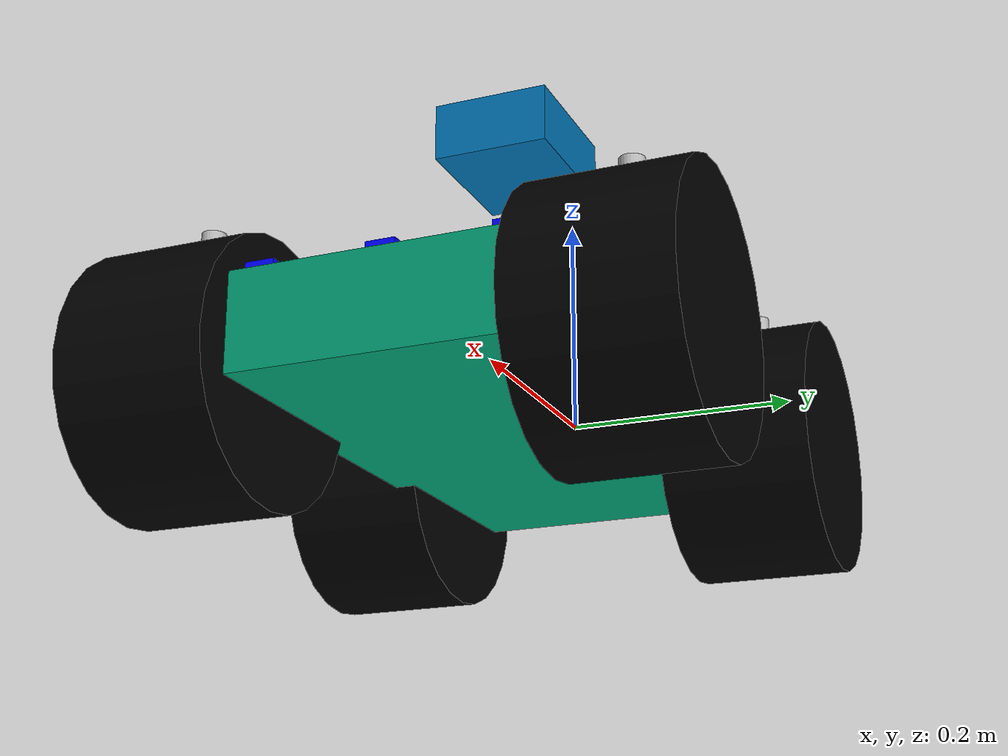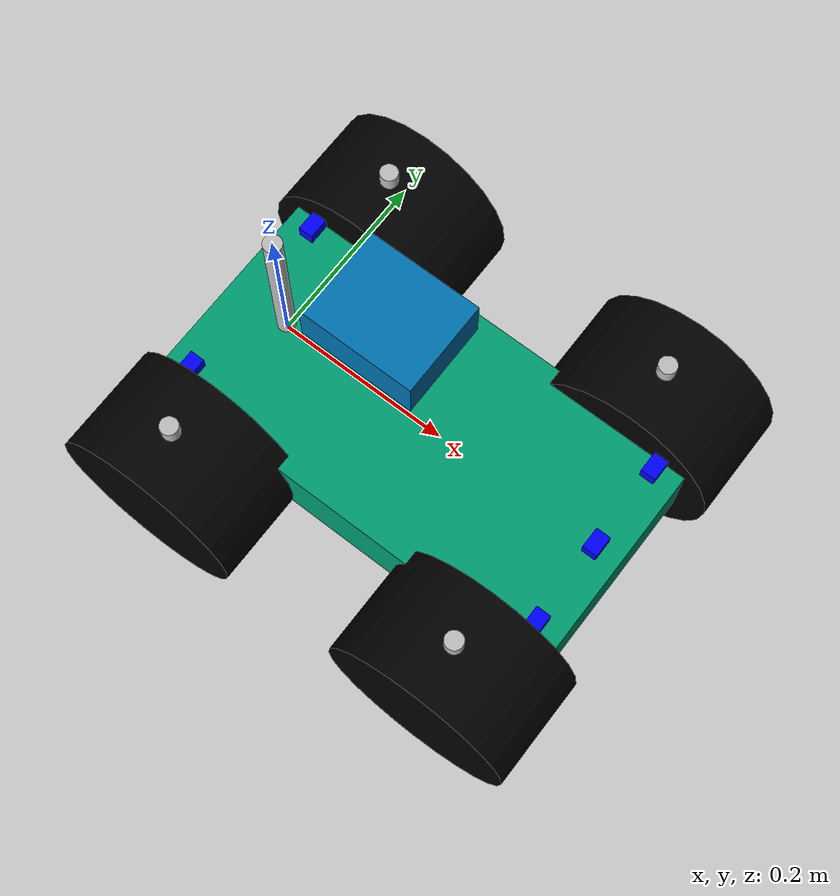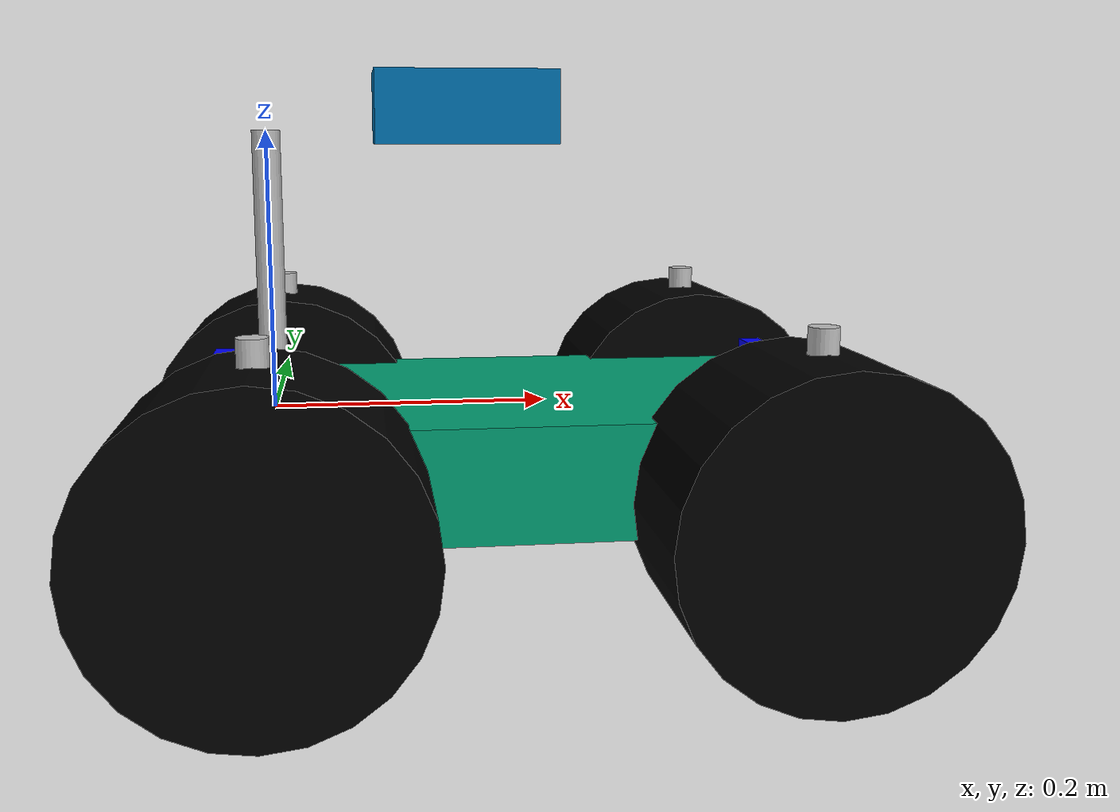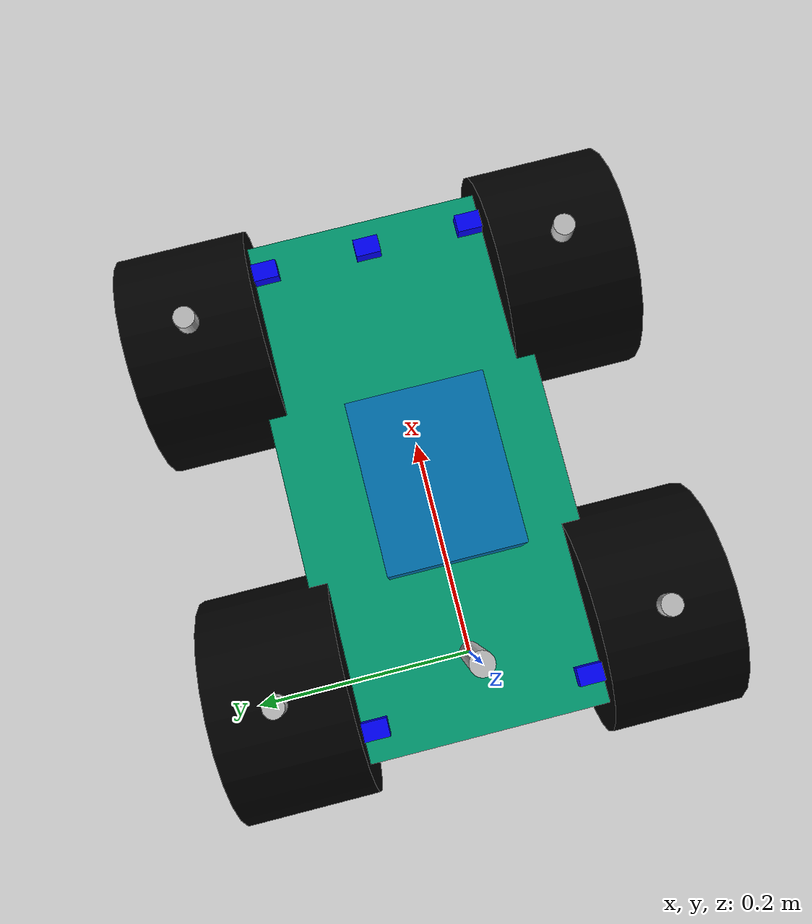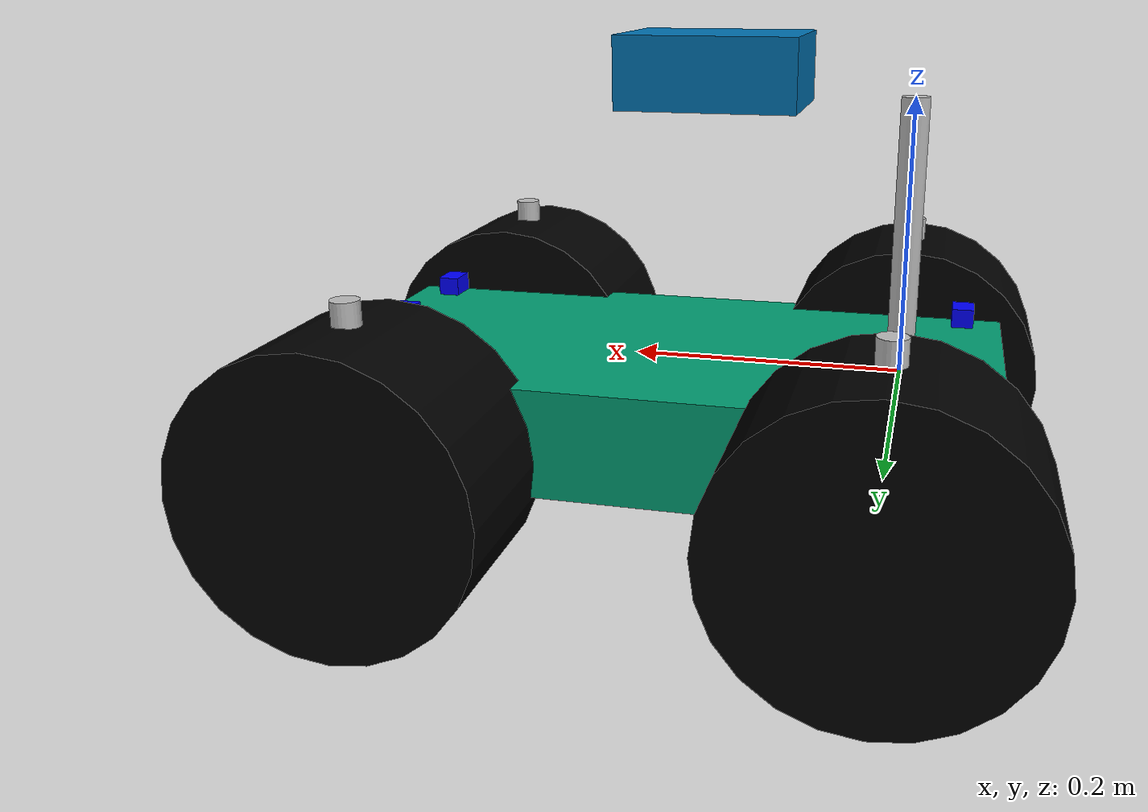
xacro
<?xml version="1.0"?>
<robot xmlns:xacro="http://ros.org/wiki/xacro" name="car">
  <xacro:arg name="wheel_diameter" default="0.217"/>

  <xacro:property name="wheel_radius" value="${$(arg wheel_diameter)/2}"/>
  <xacro:property name="wheel_width" value="0.125"/>
  <xacro:property name="wheel_friction" value="1.22"/>
  <xacro:property name="wheelbase_length" value="0.35"/>
  <xacro:property name="front_wheelbase_width" value="0.35"/>
  <xacro:property name="rear_wheelbase_width" value="0.35"/>
  <xacro:property name="wheel_mass" value="0.82"/>
  <xacro:property name="total_mass" value = "8.0"/>
  <xacro:property name="shock_travel" value = "0.09"/>
  <xacro:property name="chassis_height" value = "0.08"/>
  <xacro:property name="chassis_elevation" value = "-0.07"/>
  <xacro:property name="chassis_mass" value = "${total_mass-4*wheel_mass}"/>

  <xacro:property name="chassis_length" value = "0.50"/>
  <xacro:property name="chassis_width" value = "0.26"/>

  <xacro:macro name="cylinder_inertia" params="m r h">
        <inertia  ixx="${m*(3*r*r+h*h)/12}" ixy = "0" ixz = "0"
                    iyy="${m*(3*r*r+h*h)/12}" iyz = "0"
                    izz="${m*r*r/2}" />
  </xacro:macro>

  <xacro:macro name="box_inertia" params="m x y z">
          <inertia  ixx="${m*(y*y+z*z)/12}" ixy = "0" ixz = "0"
                    iyy="${m*(x*x+z*z)/12}" iyz = "0"
                    izz="${m*(x*x+z*z)/12}" />
  </xacro:macro>

  <xacro:macro name="sphere_inertia" params="m r">
          <inertia  ixx="${2*m*r*r/5}" ixy = "0" ixz = "0"
                    iyy="${2*m*r*r/5}" iyz = "0"
                    izz="${2*m*r*r/5}" />
  </xacro:macro>

  <xacro:macro name="cylinder_inertial" params="m r h">
    <inertial>
      <mass value="${m}"/>
      <xacro:cylinder_inertia m="${m}" r="${r}" h="${h}"/>
    </inertial>
  </xacro:macro>

  <link name="base_footprint"/>

  <link name="base_link">
    <visual>
      <origin xyz="0 0 0.1" rpy="0 0 0"/>
      <geometry>
        <cylinder length="0.2" radius="0.01"/>
      </geometry>
      <material name="silver">
        <color rgba="0.75 0.75 0.75 1"/>
      </material>
    </visual>
    <collision>
      <origin xyz="0 0 0.1" rpy="0 0 0"/>
      <geometry>
        <cylinder length="0.2" radius="0.01"/>
      </geometry>
    </collision>
    <inertial>
      <mass value="0.01"/>
      <inertia ixx="0.015" iyy="0.0375" izz="0.0375"
               ixy="0" ixz="0" iyz="0"/>
    </inertial>
  </link>

  <link name="chassis_link">
    <visual>
      <geometry>
        <box size="${chassis_length} ${chassis_width} ${chassis_height}"/>
      </geometry>
    </visual>
    <collision>
      <geometry>
        <box size="${chassis_length} ${chassis_width} ${chassis_height}"/>
      </geometry>
    </collision>
    <inertial>
      <mass value="${chassis_mass}"/>
      <xacro:box_inertia m="${chassis_mass}" x="${chassis_length}" y="${chassis_width}" z="${chassis_height}"/>
    </inertial>
  </link>

  <link name="back_left_wheel">
    <visual>
      <geometry>
        <cylinder length="${wheel_width}" radius="${wheel_radius}"/>
      </geometry>
      <material name="black">
        <color rgba="0 0 0 1"/>
      </material>
    </visual>
    <collision>
      <geometry>
        <cylinder length="${wheel_width}" radius="${wheel_radius}"/>
      </geometry>
    </collision>

    <xacro:cylinder_inertial m="${wheel_mass}" r="${wheel_radius}" h="${wheel_width}"/>
  </link>

  <link name="laser_scanner_link">
    <collision>
      <origin xyz="0 0 0" rpy="0 0 0"/>
      <geometry>
        <box size=".127 0.1016 0.0508"/>
      </geometry>
    </collision>
    <visual>
      <origin xyz="0 0 0" rpy="0 0 0"/>
      <geometry>
        <box size=".127 0.1016 0.0508"/>
      </geometry>
    </visual>
    <inertial>
      <mass value="1e-5"/>
      <origin xyz="0 0 0" rpy="0 0 0"/>
      <inertia ixx="1e-6" ixy="0" ixz="0" iyy="1e-6" iyz="0" izz="1e-6"/>
    </inertial>
  </link>

  <gazebo reference="laser_scanner_link">
    <sensor type="ray" name="laser_scanner">
      <always_on>true</always_on>
      <visualize>true</visualize>
      <update_rate>3</update_rate>
      <ray>
        <scan>
          <horizontal>
            <samples>360</samples>
            <resolution>1</resolution>
            <min_angle>${-pi}</min_angle>
            <max_angle>${pi}</max_angle>
          </horizontal>
        </scan>
        <range>
          <min>0.30</min>
          <max>25.0</max>
          <resolution>0.1</resolution>
        </range>
      </ray>
      <plugin name="scan" filename="libgazebo_ros_ray_sensor.so">
        <ros>
          <remapping>~/out:=scan</remapping>
        </ros>
        <output_type>sensor_msgs/LaserScan</output_type>
        <frame_name>laser_scanner_link</frame_name>
      </plugin>
    </sensor>
  </gazebo>

  <link name="back_right_wheel">
    <visual>
      <geometry>
        <cylinder length="${wheel_width}" radius="${wheel_radius}"/>
      </geometry>
      <material name="black">
        <color rgba="0 0 0 1"/>
      </material>
    </visual>
    <collision>
      <geometry>
        <cylinder length="${wheel_width}" radius="${wheel_radius}"/>
      </geometry>
    </collision>
    <xacro:cylinder_inertial m="${wheel_mass}" r="${wheel_radius}" h="${wheel_width}"/>
  </link>

  <link name="front_left_wheel_steer">
    <visual>
      <geometry>
        <cylinder length="0.01" radius="0.01"/>
      </geometry>
      <material name="black">
        <color rgba="0 0 0 1"/>
      </material>
    </visual>
    <collision>
      <geometry>
        <cylinder length="0.01" radius="0.01"/>
      </geometry>
    </collision>
    <inertial>
      <mass value="0.1"/>
      <inertia ixx="5.1458e-5" iyy="5.1458e-5" izz="6.125e-5"
               ixy="0" ixz="0" iyz="0"/>
    </inertial>
  </link>
  <link name="front_left_wheel">
    <visual>
      <geometry>
        <cylinder length="${wheel_width}" radius="${wheel_radius}"/>
      </geometry>
      <material name="black">
        <color rgba="0 0 0 1"/>
      </material>
    </visual>
    <collision>
      <geometry>
        <cylinder length="${wheel_width}" radius="${wheel_radius}"/>
      </geometry>
    </collision>
    <xacro:cylinder_inertial m="${wheel_mass}" r="${wheel_radius}" h="${wheel_width}"/>
  </link>

  <link name="front_right_wheel_steer">
    <visual>
      <geometry>
        <cylinder length="0.01" radius="0.01"/>
      </geometry>
      <material name="black">
        <color rgba="0 0 0 1"/>
      </material>
    </visual>
    <collision>
      <geometry>
        <cylinder length="0.01" radius="0.01"/>
      </geometry>
    </collision>
    <inertial>
      <mass value="0.1"/>
      <inertia ixx="5.1458e-5" iyy="5.1458e-5" izz="6.125e-5"
               ixy="0" ixz="0" iyz="0"/>
    </inertial>
  </link>

  <link name="front_right_wheel">
    <visual>
      <geometry>
        <cylinder length="${wheel_width}" radius="${wheel_radius}"/>
      </geometry>
      <material name="black">
        <color rgba="0 0 0 1"/>
      </material>
    </visual>
    <collision>
      <geometry>
        <cylinder length="${wheel_width}" radius="${wheel_radius}"/>
      </geometry>
    </collision>
    <xacro:cylinder_inertial m="${wheel_mass}" r="${wheel_radius}" h="${wheel_width}"/>
  </link>

  <link name="back_left_wheel_shock">
      <visual>
      <origin xyz="0 0 0.1" rpy="0 0 0"/>
      <geometry>
        <cylinder length="0.05" radius="0.01"/>
      </geometry>
      <material name="silver">
        <color rgba="0.75 0.75 0.75 1"/>
      </material>
    </visual>
    <collision>
      <origin xyz="0 0 0.1" rpy="0 0 0"/>
      <geometry>
        <cylinder length="0.05" radius="0.01"/>
      </geometry>
    </collision>
    <inertial>
      <mass value="0.01"/>
      <inertia ixx="0.015" iyy="0.0375" izz="0.0375"
               ixy="0" ixz="0" iyz="0"/>
    </inertial>
  </link>

  <link name="back_right_wheel_shock">
    <visual>
    <origin xyz="0 0 0.1" rpy="0 0 0"/>
    <geometry>
      <cylinder length="0.05" radius="0.01"/>
    </geometry>
    <material name="silver">
      <color rgba="0.75 0.75 0.75 1"/>
    </material>
  </visual>
  <collision>
    <origin xyz="0 0 0.1" rpy="0 0 0"/>
    <geometry>
      <cylinder length="0.05" radius="0.01"/>
    </geometry>
  </collision>
  <inertial>
    <mass value="0.01"/>
    <inertia ixx="0.015" iyy="0.0375" izz="0.0375"
              ixy="0" ixz="0" iyz="0"/>
  </inertial>
</link>

  <link name="front_left_wheel_shock">
      <visual>
      <origin xyz="0 0 0.1" rpy="0 0 0"/>
      <geometry>
        <cylinder length="0.05" radius="0.01"/>
      </geometry>
      <material name="silver">
        <color rgba="0.75 0.75 0.75 1"/>
      </material>
    </visual>
    <collision>
      <origin xyz="0 0 0.1" rpy="0 0 0"/>
      <geometry>
        <cylinder length="0.05" radius="0.01"/>
      </geometry>
    </collision>
    <inertial>
      <mass value="0.01"/>
      <inertia ixx="0.015" iyy="0.0375" izz="0.0375"
               ixy="0" ixz="0" iyz="0"/>
    </inertial>
  </link>

  <link name="front_right_wheel_shock">
      <visual>
      <origin xyz="0 0 0.1" rpy="0 0 0"/>
      <geometry>
        <cylinder length="0.05" radius="0.01"/>
      </geometry>
      <material name="silver">
        <color rgba="0.75 0.75 0.75 1"/>
      </material>
    </visual>
    <collision>
      <origin xyz="0 0 0.1" rpy="0 0 0"/>
      <geometry>
        <cylinder length="0.05" radius="0.01"/>
      </geometry>
    </collision>
    <inertial>
      <mass value="0.01"/>
      <inertia ixx="0.015" iyy="0.0375" izz="0.0375"
               ixy="0" ixz="0" iyz="0"/>
    </inertial>
  </link>

  <joint name="base_link_joint" type="fixed">
     <parent link="base_footprint"/>
     <child link="base_link"/>
     <origin rpy="0 0 0" xyz="0 0 0"/>
  </joint>

  <joint name="laser_scanner_joint" type="fixed">
    <origin rpy="0 0 0" xyz="0.1397 0 0.2159"/>
    <parent link="base_link"/>
    <child link="laser_scanner_link"/>
  </joint>

  <joint name="back_left_shock_joint" type="prismatic">
    <limit lower="0" upper="${shock_travel}" effort="100" velocity="100"/>
    <axis xyz="0 0 1"/>
    <parent link="base_link"/>
    <child link="back_left_wheel_shock"/>
    <origin rpy="0 0 0" xyz="0 ${rear_wheelbase_width/2}  ${-shock_travel/2}"/>
  </joint>

  <joint name="back_left_wheel_joint" type="continuous">
    <axis xyz="0 0 1"/>
    <parent link="back_left_wheel_shock"/>
    <child link="back_left_wheel"/>
    <origin rpy="${-pi/2} 0 0" xyz="0 0 0"/>
    <limit effort="10000" velocity="500" />
  </joint>

  <joint name="back_right_shock_joint" type="prismatic">
    <limit lower="0" upper="${shock_travel}" effort="100" velocity="100"/>
    <axis xyz="0 0 1"/>
    <parent link="base_link"/>
    <child link="back_right_wheel_shock"/>
    <origin rpy="0 0 0" xyz="0 ${-rear_wheelbase_width/2} ${-shock_travel/2}"/>
  </joint>

  <joint name="back_right_wheel_joint" type="continuous">
    <axis xyz="0 0 1"/>
    <parent link="back_right_wheel_shock"/>
    <child link="back_right_wheel"/>
    <origin rpy="${-pi/2} 0 0" xyz="0 0 0"/>
    <limit effort="10000" velocity="500" />
  </joint>

  <joint name="front_right_shock_joint" type="prismatic">
    <limit lower="0" upper="${shock_travel}" effort="100" velocity="100"/>
    <axis xyz="0 0 1"/>
    <parent link="base_link"/>
    <child link="front_right_wheel_shock"/>
    <origin rpy="0 0 0" xyz="${wheelbase_length} ${-front_wheelbase_width/2} ${-shock_travel/2}"/>
  </joint>

  <joint name="front_left_shock_joint" type="prismatic">
    <limit lower="0" upper="${shock_travel}" effort="100" velocity="100"/>
    <axis xyz="0 0 1"/>
    <parent link="base_link"/>
    <child link="front_left_wheel_shock"/>
    <origin rpy="0 0 0" xyz="${wheelbase_length} ${front_wheelbase_width/2}  ${-shock_travel/2}"/>
  </joint>

  <joint name="front_left_wheel_steer_joint" type="revolute">
    <limit lower="-1" upper="1" effort="1" velocity="5"/>
    <axis xyz="0 0 1"/>
    <parent link="front_left_wheel_shock"/>
    <child link="front_left_wheel_steer"/>
    <origin rpy="0 0 0" xyz="0 0 0"/>
  </joint>

  <joint name="front_left_wheel_joint" type="continuous">
    <axis xyz="0 0 1"/>
    <parent link="front_left_wheel_steer"/>
    <child link="front_left_wheel"/>
    <origin rpy="${-pi/2} 0 0" xyz="0 0 0"/>
  </joint>

  <joint name="front_right_wheel_steer_joint" type="revolute">
    <limit lower="-1" upper="1" effort="1" velocity="5"/>
    <axis xyz="0 0 1"/>
    <parent link="front_right_wheel_shock"/>
    <child link="front_right_wheel_steer"/>
    <origin rpy="0 0 0" xyz="0 0 0"/>
  </joint>

  <joint name="front_right_wheel_joint" type="continuous">
    <axis xyz="0 0 1"/>
    <parent link="front_right_wheel_steer"/>
    <child link="front_right_wheel"/>
    <origin rpy="${-pi/2} 0 0" xyz="0 0 0"/>
  </joint>

  <joint name="chassis_joint" type="fixed">
    <parent link="base_link"/>
    <child link="chassis_link"/>
    <origin rpy="0 0 0" xyz="${wheelbase_length/2} 0 ${chassis_height/2 + chassis_elevation}"/>
  </joint>

  <gazebo>
    <plugin name="gazebo_ros_control" filename="libgazebo_ros_control.so">
      <robotNamespace>/sim_car</robotNamespace>
    </plugin>
  </gazebo>

  <gazebo reference="front_left_wheel">
    <mu1>${wheel_friction}</mu1>
    <material>Gazebo/DarkGrey</material>
  </gazebo>
  <gazebo reference="front_right_wheel">
    <mu1>${wheel_friction}</mu1>
    <material>Gazebo/DarkGrey</material>
  </gazebo>
  <gazebo reference="back_left_wheel">
    <mu1>${wheel_friction}</mu1>
    <material>Gazebo/DarkGrey</material>
  </gazebo>
  <gazebo reference="back_right_wheel">
    <mu1>${wheel_friction}</mu1>
    <material>Gazebo/DarkGrey</material>
  </gazebo>

  <gazebo reference="base_link">
    <dampingFactor>0.00007</dampingFactor>
  </gazebo>
  <gazebo>
    <plugin name="car_gazebo_plugin" filename="libcar_gazebo_plugin.so">
    </plugin>
  </gazebo>

  <!-- Add ultrasonic sensors -->
  <link name="ultrasonic_sensor1">
    <visual>
      <geometry>
        <box size="0.017 0.024 0.020"/>
      </geometry>
      <material name="blue">
        <color rgba="0 0 1 1"/>
      </material>
    </visual>
    <collision>
      <geometry>
        <box size="0.017 0.024 0.020"/>
      </geometry>
    </collision>
    <inertial>
      <mass value="0.1"/>
      <inertia ixx="5.1458e-5" iyy="5.1458e-5" izz="6.125e-5"
              ixy="0" ixz="0" iyz="0"/>
    </inertial>
  </link>

  <link name="ultrasonic_sensor2">
    <visual>
      <geometry>
        <box size="0.017 0.024 0.020"/>
      </geometry>
      <material name="blue">
        <color rgba="0 0 1 1"/>
      </material>
    </visual>
    <collision>
      <geometry>
        <box size="0.017 0.024 0.020"/>
      </geometry>
    </collision>
    <inertial>
      <mass value="0.1"/>
      <inertia ixx="5.1458e-5" iyy="5.1458e-5" izz="6.125e-5"
              ixy="0" ixz="0" iyz="0"/>
    </inertial>
  </link>

  <link name="ultrasonic_sensor3">
    <visual>
      <geometry>
        <box size="0.017 0.024 0.020"/>
      </geometry>
      <material name="blue">
        <color rgba="0 0 1 1"/>
      </material>
    </visual>
    <collision>
      <geometry>
        <box size="0.017 0.024 0.020"/>
      </geometry>
    </collision>
    <inertial>
      <mass value="0.1"/>
      <inertia ixx="5.1458e-5" iyy="5.1458e-5" izz="6.125e-5"
              ixy="0" ixz="0" iyz="0"/>
    </inertial>
  </link>

  <link name="ultrasonic_sensor4">
    <visual>
      <geometry>
        <box size="0.017 0.024 0.020"/>
      </geometry>
      <material name="blue">
        <color rgba="0 0 1 1"/>
      </material>
    </visual>
    <collision>
      <geometry>
        <box size="0.017 0.024 0.020"/>
      </geometry>
    </collision>
    <inertial>
      <mass value="0.1"/>
      <inertia ixx="5.1458e-5" iyy="5.1458e-5" izz="6.125e-5"
              ixy="0" ixz="0" iyz="0"/>
    </inertial>
  </link>

  <link name="ultrasonic_sensor5">
    <visual>
      <geometry>
        <box size="0.017 0.024 0.020"/>
      </geometry>
      <material name="blue">
        <color rgba="0 0 1 1"/>
      </material>
    </visual>
    <collision>
      <geometry>
        <box size="0.017 0.024 0.020"/>
      </geometry>
    </collision>
    <inertial>
      <mass value="0.1"/>
      <inertia ixx="5.1458e-5" iyy="5.1458e-5" izz="6.125e-5"
              ixy="0" ixz="0" iyz="0"/>
    </inertial>
  </link>

  <joint name="ultrasonic_sensor1_joint" type="fixed">
    <origin rpy="0 0 0" xyz="0.22 0.10 0.045"/>
    <parent link="chassis_link"/>
    <child link="ultrasonic_sensor1"/>
  </joint>

  <joint name="ultrasonic_sensor2_joint" type="fixed">
    <origin rpy="0 0 0" xyz="0.22 0 0.045"/>
    <parent link="chassis_link"/>
    <child link="ultrasonic_sensor2"/>
  </joint>

  <joint name="ultrasonic_sensor3_joint" type="fixed">
    <origin rpy="0 0 0" xyz="0.22 -0.10 0.045"/>
    <parent link="chassis_link"/>
    <child link="ultrasonic_sensor3"/>
  </joint>

  <joint name="ultrasonic_sensor4_joint" type="fixed">
    <origin rpy="0 0 0" xyz="-0.22 0.10 0.045"/>
    <parent link="chassis_link"/>
    <child link="ultrasonic_sensor4"/>
  </joint>

  <joint name="ultrasonic_sensor5_joint" type="fixed">
    <origin rpy="0 0 0" xyz="-0.22 -0.10 0.045"/>
    <parent link="chassis_link"/>
    <child link="ultrasonic_sensor5"/>
  </joint>

  <!-- ... (existing code) ... -->

  <gazebo reference="ultrasonic_sensor1">
    <!-- Add sensor plugin configuration here (if needed) -->
    <sensor name="ultrasonic_sensor1" type="sonar">
        <always_on>true</always_on>
        <visualize>true</visualize>
        <update_rate>10</update_rate>
        <sonar>
            <scan>
                <horizontal>
                    <samples>1</samples> <!-- Ultrasonic sensors usually have a single beam -->
                    <resolution>1</resolution> <!-- Resolution doesn't matter for a single beam -->
                    <min_angle>0</min_angle>
                    <max_angle>0</max_angle>
                </horizontal>
            </scan>
            <range>
                <min>0.25</min> <!-- Minimum range set to 0.25 meters (25 cm) for SRF02 -->
                <max>2.0</max> <!-- Maximum range set to 2 meters (200 cm) for SRF02 -->
                <resolution>0.001</resolution> <!-- Adjust the resolution as needed -->
            </range>
        </sonar>
    </sensor>
  </gazebo>

  <gazebo reference="ultrasonic_sensor2">
    <!-- Add sensor plugin configuration here (if needed) -->
    <sensor name="ultrasonic_sensor2" type="sonar">
        <always_on>true</always_on>
        <visualize>true</visualize>
        <update_rate>10</update_rate>
        <sonar>
            <scan>
                <horizontal>
                    <samples>1</samples> <!-- Ultrasonic sensors usually have a single beam -->
                    <resolution>1</resolution> <!-- Resolution doesn't matter for a single beam -->
                    <min_angle>0</min_angle>
                    <max_angle>0</max_angle>
                </horizontal>
            </scan>
            <range>
                <min>0.25</min> <!-- Minimum range set to 0.25 meters (25 cm) for SRF02 -->
                <max>2.0</max> <!-- Maximum range set to 2 meters (200 cm) for SRF02 -->
                <resolution>0.001</resolution> <!-- Adjust the resolution as needed -->
            </range>
        </sonar>
    </sensor>
  </gazebo>

  <gazebo reference="ultrasonic_sensor3">
    <!-- Add sensor plugin configuration here (if needed) -->
    <sensor name="ultrasonic_sensor3" type="sonar">
        <always_on>true</always_on>
        <visualize>true</visualize>
        <update_rate>10</update_rate>
        <sonar>
            <scan>
                <horizontal>
                    <samples>1</samples> <!-- Ultrasonic sensors usually have a single beam -->
                    <resolution>1</resolution> <!-- Resolution doesn't matter for a single beam -->
                    <min_angle>0</min_angle>
                    <max_angle>0</max_angle>
                </horizontal>
            </scan>
            <range>
                <min>0.25</min> <!-- Minimum range set to 0.25 meters (25 cm) for SRF02 -->
                <max>2.0</max> <!-- Maximum range set to 2 meters (200 cm) for SRF02 -->
                <resolution>0.001</resolution> <!-- Adjust the resolution as needed -->
            </range>
        </sonar>
    </sensor>
  </gazebo>

  <gazebo reference="ultrasonic_sensor4">
    <!-- Add sensor plugin configuration here (if needed) -->
    <sensor name="ultrasonic_sensor4" type="sonar">
        <always_on>true</always_on>
        <visualize>true</visualize>
        <update_rate>10</update_rate>
        <sonar>
            <scan>
                <horizontal>
                    <samples>1</samples> <!-- Ultrasonic sensors usually have a single beam -->
                    <resolution>1</resolution> <!-- Resolution doesn't matter for a single beam -->
                    <min_angle>0</min_angle>
                    <max_angle>0</max_angle>
                </horizontal>
            </scan>
            <range>
                <min>0.25</min> <!-- Minimum range set to 0.25 meters (25 cm) for SRF02 -->
                <max>2.0</max> <!-- Maximum range set to 2 meters (200 cm) for SRF02 -->
                <resolution>0.001</resolution> <!-- Adjust the resolution as needed -->
            </range>
        </sonar>
    </sensor>
  </gazebo>

  <gazebo reference="ultrasonic_sensor5">
    <!-- Add sensor plugin configuration here (if needed) -->
    <sensor name="ultrasonic_sensor5" type="sonar">
        <always_on>true</always_on>
        <visualize>true</visualize>
        <update_rate>10</update_rate>
        <sonar>
            <scan>
                <horizontal>
                    <samples>1</samples> <!-- Ultrasonic sensors usually have a single beam -->
                    <resolution>1</resolution> <!-- Resolution doesn't matter for a single beam -->
                    <min_angle>0</min_angle>
                    <max_angle>0</max_angle>
                </horizontal>
            </scan>
            <range>
                <min>0.25</min> <!-- Minimum range set to 0.25 meters (25 cm) for SRF02 -->
                <max>2.0</max> <!-- Maximum range set to 2 meters (200 cm) for SRF02 -->
                <resolution>0.001</resolution> <!-- Adjust the resolution as needed -->
            </range>
        </sonar>
    </sensor>
  </gazebo>

</robot>
